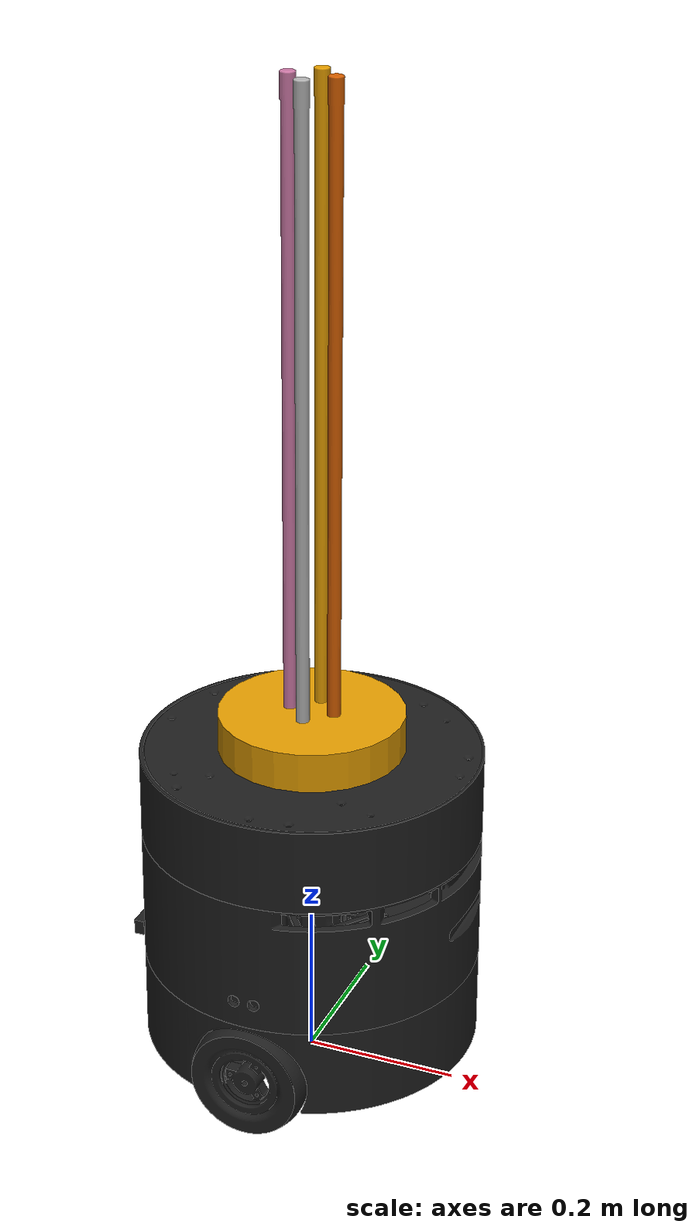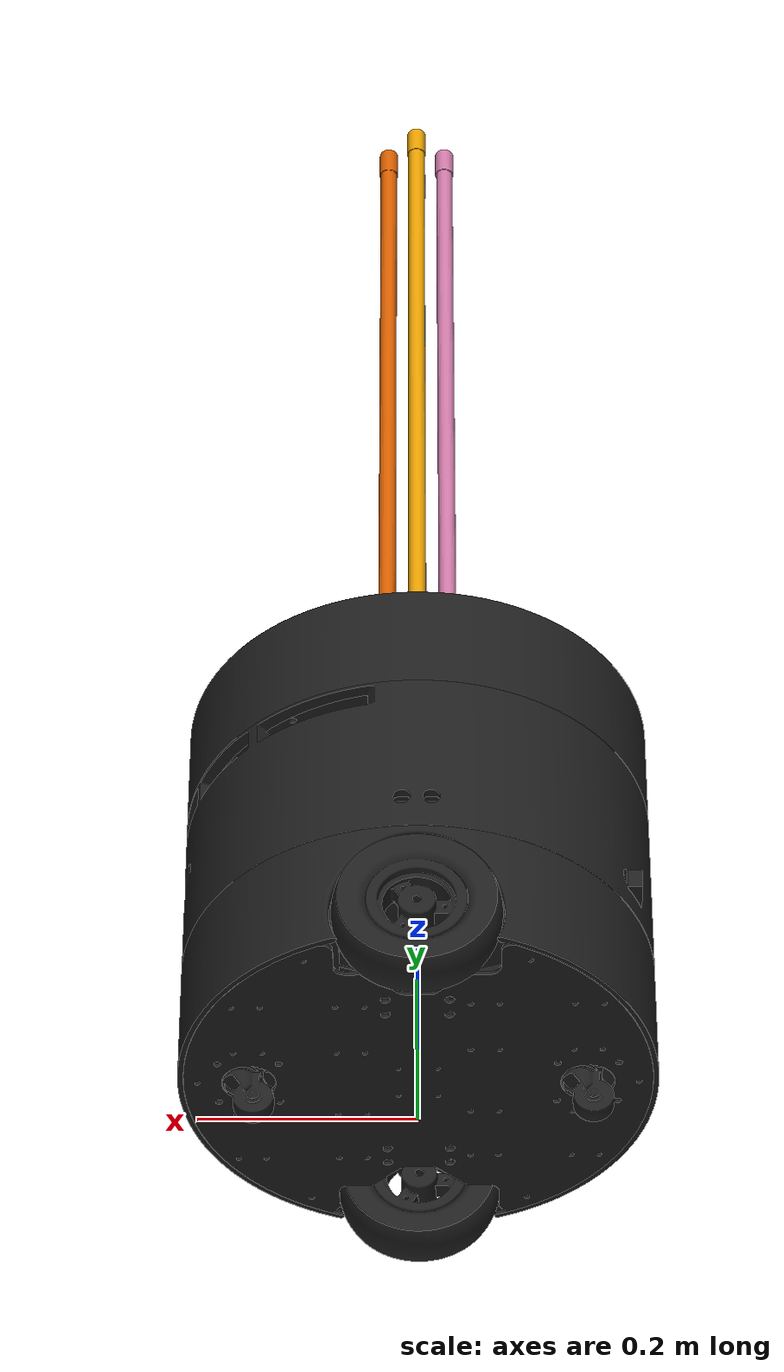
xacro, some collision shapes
<?xml version="1.0" ?>
<robot name="uvrobot_v2" xmlns:xacro="http://ros.org/wiki/xacro">
  <xacro:include filename="$(find uvrobots_description)/urdf/uvrobot_v2.gazebo.xacro"/>

  <!-- *** Link Definitions *** -->

  <!-- Base Footprint -->
	<link name="base_footprint"/>

	<!-- Base Link -->
  <joint name="base_joint" type="fixed">
    <parent link="base_footprint"/>
    <child link="base_link"/>
    <origin xyz="0.0 0.0 0.0446" rpy="0 0 0"/>
  </joint>

	<link name="base_link">
    <inertial>
      <origin xyz="0 0 0" rpy="0 0 0"/>
		  <mass value="1.28651"/>
		  <inertia ixx="4.09876e-03" ixy="2.74202e-06" ixz="1.35022e-05"
               iyy="6.10042e-03" iyz="-5.46931e-06"
               izz="1.01978e-02" />
    </inertial>

    <collision>
      <origin xyz="0 0 0" rpy="0 0 0"/>
      <geometry>
        <cylinder radius="0.215" length="0.004"/>
      </geometry>
    </collision>

    <visual>
      <origin xyz="0 0 0" rpy="0 0 0"/>
      <geometry>
        <mesh filename="package://uvrobots_description/meshes/V2/BOTTOM_CHASSIS_PLATE.STL"  scale="0.001 0.001 0.001"/>
      </geometry>
      <material name="black"/>
    </visual>
  </link>

	<!-- Caster Back Wheel -->
  <joint name="caster_back_joint" type="fixed">
    <parent link="base_link"/>
    <child link="caster_back_link"/>
    <origin xyz="-0.155 0 -0.0145" rpy="-1.5708 0 0"/>
  </joint>

  <link name="caster_back_link">
    <inertial>
      <origin xyz="0 0 0" />
      <mass value="0.09" />
      <inertia ixx="7.57929e-06" ixy="-1.2334e-13" ixz="-1.81974e-06"
               iyy="9.21232e-06" iyz="1.50542e-13"
               izz="4.83124e-06" />
    </inertial>

    <collision>
      <origin xyz="0 0 0" rpy="0 0 0"/>
      <geometry>
        <box size="0.059 0.059 0.059"/>
      </geometry>
    </collision>

    <visual>
      <origin xyz="0 0 0" rpy="0 0 0"/>
      <geometry>
        <mesh filename="package://uvrobots_description/meshes/V2/CASTOR_WHEELS.STL"  scale="0.001 0.001 0.001"/>
      </geometry>
      <material name="black"/>
    </visual>
  </link>

  <!-- Caster Front Wheel -->
  <joint name="caster_front_joint" type="fixed">
    <parent link="base_link"/>
    <child link="caster_front_link"/>
    <origin xyz="0.155 0 -0.0145" rpy="-1.5708 0 0"/>
  </joint>

  <link name="caster_front_link">
    <inertial>
      <origin xyz="0 0 0" />
      <mass value="0.09" />
      <inertia ixx="7.57929e-06" ixy="-1.2334e-13" ixz="-1.81974e-06"
               iyy="9.21232e-06" iyz="1.50542e-13"
               izz="4.83124e-06" />
    </inertial>

    <collision>
      <origin xyz="0 0 0" rpy="0 0 0"/>
      <geometry>
        <box size="0.059 0.059 0.059"/>
      </geometry>
    </collision>

    <visual>
      <origin xyz="0 0 0" rpy="0 0 0"/>
      <geometry>
        <mesh filename="package://uvrobots_description/meshes/V2/CASTOR_WHEELS.STL"  scale="0.001 0.001 0.001"/>
      </geometry>
      <material name="black"/>
    </visual>
  </link>

  <!-- Wheel Left Joint -->
  <joint name="wheel_left_joint" type="continuous">
    <parent link="base_link"/>
    <child link="wheel_left_link"/>
    <origin xyz="0.0 0.20055 0.032" rpy="-1.5708 0 0"/>
    <axis xyz="0 0 1"/>
  </joint>

  <link name="wheel_left_link">
    <inertial>
      <origin xyz="0 0 0" />
      <mass value="0.5" />
      <inertia ixx="1.25658e-03" ixy="2.3467e-14" ixz="6.91808e-16"
               iyy="2.28482e-03" iyz="-4.63769e-14"
               izz="1.25658e-03" />
    </inertial>

    <collision>
      <origin xyz="0 0 0" rpy="0 0 0"/>
      <geometry>
        <cylinder length="0.0483" radius="0.076784"/>
      </geometry>
    </collision>

    <visual>
      <origin xyz="0 0 0" rpy="1.5708 0 0"/>
      <geometry>
        <mesh filename="package://uvrobots_description/meshes/V2/LEFT_WHEEL.STL"  scale="0.001 0.001 0.001"/>
      </geometry>
      <material name="dark"/>
    </visual>
  </link>

  <!-- Wheel Right Joint -->
  <joint name="wheel_right_joint" type="continuous">
    <parent link="base_link"/>
    <child link="wheel_right_link"/>
    <origin xyz="0.0 -0.20055 0.032" rpy="-1.5708 0 0"/>
    <axis xyz="0 0 1"/>
  </joint>

  <link name="wheel_right_link">
    <inertial>
      <origin xyz="0 0 0" />
      <mass value="0.5" />
      <inertia ixx="1.25658e-03" ixy="2.3467e-14" ixz="6.91808e-16"
               iyy="2.28482e-03" iyz="-4.63769e-14"
               izz="1.25658e-03" />
    </inertial>

    <collision>
      <origin xyz="0 0 0" rpy="0 0 0"/>
      <geometry>
        <cylinder length="0.0483" radius="0.076784"/>
      </geometry>
    </collision>

    <visual>
      <origin xyz="0 0 0" rpy="1.5708 0 0"/>
      <geometry>
        <mesh filename="package://uvrobots_description/meshes/V2/RIGHT_WHEEL.STL"  scale="0.001 0.001 0.001"/>
      </geometry>
      <material name="dark"/>
    </visual>
  </link>

  <!-- Top Link -->
  <joint name="top_joint" type="fixed">
    <parent link="base_link"/>
    <child link="top_link"/>
    <origin xyz="0.0 0.0 0.116" rpy="0 0 0"/>
  </joint>

  <link name="top_link">
    <inertial>
      <origin xyz="0 0 0" rpy="0 0 0"/>
			<mass value="0.92649"/>
			<inertia ixx="6.3629e-03" ixy="3.26e-07" ixz="1.85614e-21"
               iyy="6.66864e-03" iyz="1.50542e-13"
               izz="4.83124e-06" />
		</inertial>

		<collision>
			<origin xyz="0 0 0" rpy="0 0 0"/>
			<geometry>
				<cylinder radius="0.215" length="0.004"/>
			</geometry>
		</collision>

		<visual>
			<origin xyz="0.0075 0.0015 0" rpy="0 0 0"/>
			<geometry>
				<mesh filename="package://uvrobots_description/meshes/V2/TOP_CHASSIS_PLATE.STL"  scale="0.001 0.001 0.001"/>
			</geometry>
			<material name="black"/>
		</visual>
	</link>

	<!-- Base Skirt -->
	<joint name="base_skirt_joint" type="fixed">
    <parent link="base_link"/>
    <child link="base_skirt_link"/>
    <origin xyz="0.0 0.0 0.061" rpy="0 0 0"/>
  </joint>

	<link name="base_skirt_link">
		<inertial>
			<origin xyz="0 0 0" rpy="0 0 0"/>
			<mass value="0.25"/>
			<inertia ixx="1.94954e-04" ixy="6.66951e-02" ixz="-1.07234e-02"
               iyy="2.27484e+1" iyz="3.07002e-05"
               izz="2.27486e+1" />
		</inertial>

		<collision>
			<origin xyz="0 0 0" rpy="0 0 0"/>
			<geometry>
				<cylinder radius="0.220" length="0.120"/>
			</geometry>
		</collision>

		<visual>
			<origin xyz="0 0 0" rpy="0 0 0"/>
			<geometry>
				<mesh filename="package://uvrobots_description/meshes/V2/BASE_SKIRT.STL"  scale="0.001 0.001 0.001"/>
			</geometry>
			<material name="black"/>
		</visual>
	</link>

  <!-- IMU -->
	<joint name="imu_joint" type="fixed">
    <parent link="base_link"/>
    <child link="imu_base"/>
    <!--origin xyz="-0.032 0 0.068" rpy="0 0 0"/-->
    <origin xyz="0.1076 0.0 0.2432" rpy="0 0 0"/>
  </joint>

	<link name="imu_base"/>

  <!-- Realsense D455 Camera Link -->
  <joint name="camera_joint" type="fixed">
    <parent link="base_link"/>
    <child link="camera_link"/>
    <origin xyz="0.198 0.0 0.2085" rpy="0 0 0"/>
  </joint>

  <link name="camera_link">
    <inertial>
      <origin xyz="0 0 0" />
      <mass value="0.72" />
      <inertia ixx="9.86959e-05" ixy="1.1973e-07" ixz="-7.99621e-07"
               iyy="9.2973e-06" iyz="1.12977e-08"
               izz="9.81244e-05" />
  	</inertial>

  	<collision>
      <origin xyz="0 0 0" rpy="0 0 0"/>
      <geometry>
        <box size="0.029 0.124 0.026"/>
      </geometry>
    </collision>

    <visual>
      <origin xyz="-0.005 0 -0.0015" rpy="0 0 0"/>
      <geometry>
        <mesh filename="package://uvrobots_description/meshes/V2/INTEL_REALSENSE_D455.STL"  scale="0.001 0.001 0.001"/>
      </geometry>
      <material name="black"/>
    </visual>
  </link>

  <joint name="camera_rgb_joint" type="fixed">
    <origin xyz="0.0 -0.02 0.0" rpy="0.0 0.0 0.0"/>
    <parent link="camera_link"/>
    <child link="camera_rgb_frame" />
  </joint>

  <link name="camera_rgb_frame"/>

  <joint name="camera_rgb_optical_joint" type="fixed">
    <origin xyz="0 0 0" rpy="-1.57079632679 0 -1.57079632679" />
    <parent link="camera_rgb_frame" />
    <child link="camera_rgb_optical_frame" />
  </joint>

  <link name="camera_rgb_optical_frame"/>

  <joint name="camera_depth_joint" type="fixed">
    <origin xyz="0 -0.045 0" rpy="0 0 0" />
    <parent link="camera_link" />
    <child link="camera_depth_frame" />
  </joint>

  <link name="camera_depth_frame"/>

  <joint name="camera_depth_optical_joint" type="fixed">
    <origin xyz="0 0 0" rpy="-1.57079632679 0 -1.57079632679" />
    <parent link="camera_depth_frame" />
    <child link="camera_depth_optical_frame" />
  </joint>

  <link name="camera_depth_optical_frame"/>

  <joint name="camera_optical_joint" type="fixed">
  <!-- these values have to be these values otherwise the gazebo camera
      image won't be aligned properly with the frame it is supposedly
      originating from -->
    <origin xyz="0 0 0" rpy="-1.57079632679 0 -1.57079632679"/>
    <parent link="camera_link"/>
    <child link="camera_link_optical"/>
  </joint>

  <link name="camera_link_optical"/>

  <!-- YDLIDAR G2 Scan -->
  <joint name="scan_joint" type="fixed">
    <parent link="base_link"/>
    <child link="base_scan"/>
    <origin xyz="0.138 0 0.2" rpy="0 0 0"/>
  </joint>

  <link name="base_scan">
    <inertial>
      <mass value="0.114" />
      <origin xyz="0 0 0" rpy="0 0 0"/>
      <inertia ixx="0.001" ixy="0.0" ixz="0.0"
               iyy="0.001" iyz="0.0"
               izz="0.001" />
    </inertial>

    <collision>
      <origin xyz="0 0 0" rpy="0 0 0"/>
      <geometry>
        <cylinder length="0.0425" radius="0.03685"/>
      </geometry>
    </collision>

    <visual>
      <origin xyz="0 0 0.0525" rpy="0 0 1.5708"/>
      <geometry>
        <mesh filename="package://uvrobots_description/meshes/V2/YDLidar_G2.STL"  scale="0.001 0.001 0.001"/>
      </geometry>
      <material name="dark"/>
    </visual>
  </link>

  <!-- Ultrasonic Sensor -->
  <joint name="base_ir_right1_joint" type="fixed">
    <parent link="base_link"/>
  	<child link="base_ir_right1"/>
  	<origin xyz="0 -0.200 0.150" rpy="-1.5708 0 0"/>
	</joint>

	<link name="base_ir_right1">
  	<inertial>
  		<mass value="1e-5" />
  		<origin xyz="0 0 0" rpy="0 0 0"/>
  		<inertia ixx="1e-6" ixy="0" ixz="0"
  		  iyy="1e-6" iyz="0"
        izz="1e-6" />
    </inertial>

    <collision>
      <origin xyz="0 0 0" rpy="0 0 0"/>
      <geometry>
        <box size="0.045 0.02 0.0135"/>
      </geometry>
    </collision>

    <visual>
      <origin xyz="-0.002 -0.0025 -0.0075" rpy="3.14159 0 1.5708"/>
      <geometry>
        <mesh filename="package://uvrobots_description/meshes/V2/HC-SR04.STL"  scale="0.001 0.001 0.001"/>
      </geometry>
      <material name="dark"/>
    </visual>
  </link>

  <joint name="base_ir_right2_joint" type="fixed">
    <parent link="base_link"/>
    <child link="base_ir_right2"/>
    <origin xyz="-0.200 -0.0855 0.150" rpy="1.5708 0 1.5708"/>
  </joint>

  <link name="base_ir_right2">
    <inertial>
      <mass value="1e-5" />
      <origin xyz="0 0 0" rpy="0 0 0"/>
      <inertia ixx="1e-6" ixy="0" ixz="0"
        iyy="1e-6" iyz="0"
        izz="1e-6" />
    </inertial>

    <collision>
      <origin xyz="0 0 0" rpy="0 0 0"/>
      <geometry>
        <box size="0.045 0.02 0.0135"/>
      </geometry>
    </collision>

    <visual>
      <origin xyz="-0.001 0.0025 0.01" rpy="2.70526 0 -1.5708"/>
      <geometry>
        <mesh filename="package://uvrobots_description/meshes/V2/HC-SR04.STL"  scale="0.001 0.001 0.001"/>
      </geometry>
      <material name="dark"/>
    </visual>
  </link>

  <joint name="base_ir_left1_joint" type="fixed">
    <parent link="base_link"/>
    <child link="base_ir_left1"/>
    <origin xyz="0 0.200 0.150" rpy="1.5708 0 0"/>
  </joint>

  <link name="base_ir_left1">
    <inertial>
      <mass value="1e-5" />
      <origin xyz="0 0 0" rpy="0 0 0"/>
  		<inertia ixx="1e-6" ixy="0" ixz="0"
    		iyy="1e-6" iyz="0"
    		izz="1e-6" />
  	</inertial>

  	<collision>
  		<origin xyz="0 0 0" rpy="0 0 0"/>
  		<geometry>
  			<box size="0.045 0.02 0.0135"/>
  		</geometry>
  	</collision>

  	<visual>
  		<origin xyz="0.002 0.0025 -0.007" rpy="3.14159 0 -1.5708"/>
  		<geometry>
    		<mesh filename="package://uvrobots_description/meshes/V2/HC-SR04.STL"  scale="0.001 0.001 0.001"/>
  		</geometry>
  		<material name="dark"/>
  	</visual>
	</link>

	<joint name="base_ir_left2_joint" type="fixed">
  	<parent link="base_link"/>
  	<child link="base_ir_left2"/>
  	<origin xyz="-0.200 0.0855 0.150" rpy="1.5708 0 1.5708"/>
	</joint>

	<link name="base_ir_left2">
  	<inertial>
  		<mass value="1e-5" />
  		<origin xyz="0 0 0" rpy="0 0 0"/>
  		<inertia ixx="1e-6" ixy="0" ixz="0"
    		iyy="1e-6" iyz="0"
    		izz="1e-6" />
  	</inertial>

  	<collision>
  		<origin xyz="0 0 0" rpy="0 0 0"/>
  		<geometry>
  			<box size="0.045 0.02 0.0135"/>
  		</geometry>
  	</collision>

  	<visual>
  		<origin xyz="0.004 0.0025 0.012" rpy="3.57792 0 -1.5708"/>
  		<geometry>
    		<mesh filename="package://uvrobots_description/meshes/V2/HC-SR04.STL"  scale="0.001 0.001 0.001"/>
  		</geometry>
  		<material name="dark"/>
  	</visual>
	</link>

	<!-- Top Skirt -->
	<joint name="top_skirt_joint" type="fixed">
    <parent link="base_link"/>
  	<child link="top_skirt_link"/>
  	<origin xyz="0.0 0.0 0.19755" rpy="0 0 0"/>
	</joint>

	<link name="top_skirt_link">
    <inertial>
      <origin xyz="0 0 0" rpy="0 0 0"/>
      <mass value="0.37"/>
		  <inertia ixx="7.6943e-02" ixy="4.24102e-03" ixz="-1.39489e-03"
               iyy="-3.13302e-02" iyz="-1.10959e-04"
               izz="3.45636e-02" />
  	</inertial>

		<collision>
      <origin xyz="0 0 0" rpy="0 0 0"/>
      <geometry>
        <cylinder radius="0.220" length="0.1772"/>
			</geometry>
		</collision>

		<visual>
      <origin xyz="0.037 -0.001 0" rpy="0 0 0"/>
      <geometry>
        <mesh filename="package://uvrobots_description/meshes/V2/TOP_SKIRT.STL"  scale="0.001 0.001 0.001"/>
      </geometry>
      <material name="black"/>
    </visual>
  </link>

	<!-- UV Model -->
  <joint name="uv_base_joint" type="fixed">
    <parent link="base_link"/>
    <child link="uv_base_link"/>
    <origin xyz="0.0 0.0 0.2972" rpy="0 0 0"/>
  </joint>

  <link name="uv_base_link">
    <inertial>
      <origin xyz="0 0 0" rpy="0 0 0"/>
			<mass value="1.0"/>
			<inertia ixx="6.35262e-03" ixy="5.92227e-07" ixz="-1.11331e-09"
               iyy="6.05308e-03" iyz="-1.25024e-11"
               izz="1.24042e-02" />
		</inertial>

		<collision>
			<origin xyz="0 0 0" rpy="0 0 0"/>
			<geometry>
				<cylinder radius="0.215" length="0.004"/>
			</geometry>
		</collision>

		<visual>
			<origin xyz="-0.0175 -0.005 0" rpy="0 0 0"/>
			<geometry>
				<mesh filename="package://uvrobots_description/meshes/V2_UV_Module/UV_BOTTOM_PLATE.STL"  scale="0.001 0.001 0.001"/>
			</geometry>
			<material name="black"/>
		</visual>
	</link>

  <!-- UV SKIRT -->
	<joint name="uv_skirt_joint" type="fixed">
    <parent link="uv_base_link"/>
    <child link="uv_skirt_link"/>
    <origin xyz="0.0 0.0 0.05425" rpy="0 0 0"/>
  </joint>

	<link name="uv_skirt_link">
		<inertial>
			<origin xyz="0 0 0" rpy="0 0 0"/>
			<mass value="0.25"/>
			<inertia ixx="4.58184e-02" ixy="6.22084e-04" ixz="-4.34012e-06"
               iyy="4.71548e-02" iyz="-1.30507e-05"
               izz="8.93176e-02" />
		</inertial>

		<collision>
			<origin xyz="0 0 0" rpy="0 0 0"/>
			<geometry>
				<cylinder radius="0.220" length="0.1772"/>
			</geometry>
		</collision>

		<visual>
			<origin xyz="-0.0001 0.0001 0" rpy="0 0 0"/>
			<geometry>
				<mesh filename="package://uvrobots_description/meshes/V2_UV_Module/UV_SKIRT.STL"  scale="0.001 0.001 0.001"/>
			</geometry>
			<material name="black"/>
		</visual>
	</link>

	<joint name="uv_top_joint" type="fixed">
    <parent link="uv_base_link"/>
    <child link="uv_top_link"/>
    <origin xyz="0.0 0.0 0.1082" rpy="0 0 0"/>
	</joint>

	<link name="uv_top_link">
		<inertial>
			<origin xyz="0 0 0" rpy="0 0 0"/>
			<mass value="1.0"/>
			<inertia ixx="6.44579e-03" ixy="-2.25193e-06" ixz="-1.5402e-08"
               iyy="6.46613e-03" iyz="7.19527e-09"
               izz="1.29105e-02" />
		</inertial>

		<collision>
			<origin xyz="0 0 0" rpy="0 0 0"/>
			<geometry>
				<cylinder radius="0.215" length="0.004"/>
			</geometry>
		</collision>

		<visual>
			<origin xyz="-0.0075 0.0075 -0.00075" rpy="0 0 0"/>
			<geometry>
				<mesh filename="package://uvrobots_description/meshes/V2_UV_Module/UV_TOP_PLATE.STL"  scale="0.001 0.001 0.001"/>
			</geometry>
			<material name="black"/>
		</visual>
	</link>

	<!-- UV Lamp Top Module -->
	<joint name="uv_joint" type="fixed">
    <parent link="uv_base_link"/>
    <child link="uv_link"/>
    <origin xyz="0 0 0.137" rpy="0 0 0"/>
  </joint>

  <link name="uv_link">
    <inertial>
      <mass value="0.114" />
    	<origin xyz="0 0 0" />
    		<inertia ixx="0.001" ixy="0.0" ixz="0.0"
             iyy="0.001" iyz="0.0"
             izz="0.001" />
  	</inertial>

  	<collision>
  		<origin xyz="0 0 0" rpy="0 0 0"/>
  		<geometry>
  			<cylinder length="0.0516" radius="0.120"/>
  		</geometry>
  	</collision>

  	<visual>
  		<origin xyz="0 0 0.147" rpy="0 0 0"/>
  		<geometry>
    		<mesh filename="package://uvrobots_description/meshes/V2_UV_Module/UV_LAMP_TOP.STL"  scale="0.001 0.001 0.001"/>
  		</geometry>
  		<material name="dark"/>
  	</visual>
	</link>

	<!-- Ultrasonic Sensor -->
	<joint name="uv_ir_right1_joint" type="fixed">
    <parent link="uv_link"/>
    <child link="uv_ir_right1"/>
    <origin xyz="0.067 -0.069 0.0035" rpy="0.785398 0 0.785398"/>
  </joint>

	<link name="uv_ir_right1">
  	<inertial>
      <mass value="1e-5" />
      <origin xyz="0 0 0" rpy="0 0 0"/>
      <inertia ixx="1e-6" ixy="0" ixz="0"
    		iyy="1e-6" iyz="0"
    		izz="1e-6" />
  	</inertial>

  	<collision>
  		<origin xyz="0 0 0" rpy="0 0 0"/>
  		<geometry>
  			<box size="0.045 0.02 0.0135"/>
  		</geometry>
  	</collision>

  	<visual>
  		<origin xyz="0 0 0.0" rpy="0 0 -1.5708"/>
  		<geometry>
    		<mesh filename="package://uvrobots_description/meshes/V2_UV_Module/HC-SR04.STL"  scale="0.001 0.001 0.001"/>
  		</geometry>
  		<material name="dark"/>
  	</visual>
	</link>

	<joint name="uv_ir_right2_joint" type="fixed">
  	<parent link="uv_link"/>
  	<child link="uv_ir_right2"/>
  	<origin xyz="-0.069 -0.067 0.0035" rpy="3.9269 3.14159 2.35619"/>
	</joint>

	<link name="uv_ir_right2">
  	<inertial>
  		<mass value="1e-5" />
  		<origin xyz="0 0 0" rpy="0 0 0"/>
  		<inertia ixx="1e-6" ixy="0" ixz="0"
    		iyy="1e-6" iyz="0"
    		izz="1e-6" />
  	</inertial>

  	<collision>
  		<origin xyz="0 0 0" rpy="0 0 0"/>
  		<geometry>
  			<box size="0.045 0.02 0.0135"/>
  		</geometry>
  	</collision>

  	<visual>
  		<origin xyz="0 0 0.0" rpy="0 0 -1.5708"/>
  		<geometry>
    		<mesh filename="package://uvrobots_description/meshes/V2_UV_Module/HC-SR04.STL"  scale="0.001 0.001 0.001"/>
  		</geometry>
  		<material name="dark"/>
  	</visual>
	</link>

	<joint name="uv_ir_left1_joint" type="fixed">
  	<parent link="uv_link"/>
  	<child link="uv_ir_left1"/>
  	<origin xyz="0.067 0.069 0.0035" rpy="-0.785398 0 -0.785398"/>
	</joint>

	<link name="uv_ir_left1">
  	<inertial>
  		<mass value="1e-5" />
  		<origin xyz="0 0 0" rpy="0 0 0"/>
  		<inertia ixx="1e-6" ixy="0" ixz="0"
    		iyy="1e-6" iyz="0"
    		izz="1e-6" />
  	</inertial>

  	<collision>
  		<origin xyz="0 0 0" rpy="0 0 0"/>
  		<geometry>
  			<box size="0.045 0.02 0.0135"/>
  		</geometry>
  	</collision>

  	<visual>
  		<origin xyz="0 0 0.0" rpy="0 0 -1.5708"/>
  		<geometry>
    		<mesh filename="package://uvrobots_description/meshes/V2_UV_Module/HC-SR04.STL"  scale="0.001 0.001 0.001"/>
  		</geometry>
  		<material name="dark"/>
  	</visual>
	</link>

	<joint name="uv_ir_left2_joint" type="fixed">
  	<parent link="uv_link"/>
  	<child link="uv_ir_left2"/>
  	<origin xyz="-0.067 0.069 0.0035" rpy="0.785398 0 -2.35619"/>
	</joint>

	<link name="uv_ir_left2">
  	<inertial>
  		<mass value="1e-5" />
  		<origin xyz="0 0 0" rpy="0 0 0"/>
  		<inertia ixx="1e-6" ixy="0" ixz="0"
    		iyy="1e-6" iyz="0"
    		izz="1e-6" />
  	</inertial>

  	<collision>
  		<origin xyz="0 0 0" rpy="0 0 0"/>
  		<geometry>
  			<box size="0.045 0.02 0.0135"/>
  		</geometry>
  	</collision>

  	<visual>
  		<origin xyz="0 0 0.0" rpy="0 0 -1.5708"/>
  		<geometry>
    		<mesh filename="package://uvrobots_description/meshes/V2_UV_Module/HC-SR04.STL"  scale="0.001 0.001 0.001"/>
  		</geometry>
  		<material name="dark"/>
  	</visual>
	</link>

	<!-- UV Tube Light -->
	<joint name="uv_lamp_front_joint" type="fixed">
  	<parent link="uv_link"/>
  	<child link="uv_lamp_front_link"/>
  	<origin xyz="0.03 0 0.385" rpy="0 0 0"/>
	</joint>

  <link name="uv_lamp_front_link">
  	<inertial>
  		<origin xyz="0 0 0" />
      <mass value="0.083" />
  		<inertia ixx="1.24481e-02" ixy="3.27202e-22" ixz="-3.81582e-20"
               iyy="1.24481e-02" iyz="-3.01958e-18"
               izz="7.74459e-06" />
  	</inertial>

  	<collision>
  		<origin xyz="0 0 0" rpy="0 0 0"/>
  		<geometry>
  			<cylinder length="0.8454" radius="0.0094"/>
  		</geometry>
  	</collision>

  	<visual>
  		<origin xyz="0 0 0.0" rpy="0 0 0"/>
  		<geometry>
    		<mesh filename="package://uvrobots_description/meshes/V2_UV_Module/UV_LAMP.STL"  scale="0.001 0.001 0.001"/>
  		</geometry>
  		<material name="dark"/>
  	</visual>
	</link>

	<joint name="uv_lamp_back_joint" type="fixed">
  	<parent link="uv_link"/>
  	<child link="uv_lamp_back_link"/>
  	<origin xyz="-0.03 0 0.385" rpy="0 0 0"/>
	</joint>

  <link name="uv_lamp_back_link">
  	<inertial>
  		<origin xyz="0 0 0" />
  		<mass value="0.083" />
      <inertia ixx="1.24481e-02" ixy="3.27202e-22" ixz="-3.81582e-20"
               iyy="1.24481e-02" iyz="-3.01958e-18"
               izz="7.74459e-06" />
  	</inertial>

  	<collision>
  		<origin xyz="0 0 0" rpy="0 0 0"/>
  		<geometry>
  			<cylinder length="0.8454" radius="0.0094"/>
  		</geometry>
  	</collision>

  	<visual>
  		<origin xyz="0 0 0.0" rpy="0 0 0"/>
  		<geometry>
    		<mesh filename="package://uvrobots_description/meshes/V2_UV_Module/UV_LAMP.STL"  scale="0.001 0.001 0.001"/>
  		</geometry>
  		<material name="dark"/>
  	</visual>
	</link>

  <joint name="uv_lamp_right_joint" type="fixed">
  	<parent link="uv_link"/>
  	<child link="uv_lamp_right_link"/>
  	<origin xyz="0 -0.03 0.385" rpy="0 0 0"/>
	</joint>

  <link name="uv_lamp_right_link">
  	<inertial>
  		<origin xyz="0 0 0" />
  		<mass value="0.083" />
      <inertia ixx="1.24481e-02" ixy="3.27202e-22" ixz="-3.81582e-20"
               iyy="1.24481e-02" iyz="-3.01958e-18"
               izz="7.74459e-06" />
  	</inertial>

  	<collision>
  		<origin xyz="0 0 0" rpy="0 0 0"/>
  		<geometry>
  			<cylinder length="0.8454" radius="0.0094"/>
  		</geometry>
  	</collision>

  	<visual>
  		<origin xyz="0 0 0.0" rpy="0 0 0"/>
  		<geometry>
    		<mesh filename="package://uvrobots_description/meshes/V2_UV_Module/UV_LAMP.STL"  scale="0.001 0.001 0.001"/>
  		</geometry>
  		<material name="dark"/>
  	</visual>
	</link>

	<joint name="uv_lamp_left_joint" type="fixed">
  	<parent link="uv_link"/>
  	<child link="uv_lamp_left_link"/>
  	<origin xyz="0 0.03 0.385" rpy="0 0 0"/>
	</joint>

  <link name="uv_lamp_left_link">
  	<inertial>
  		<origin xyz="0 0 0" />
  		<mass value="0.083" />
      <inertia ixx="1.24481e-02" ixy="3.27202e-22" ixz="-3.81582e-20"
               iyy="1.24481e-02" iyz="-3.01958e-18"
               izz="7.74459e-06" />
  	</inertial>

  	<collision>
  		<origin xyz="0 0 0" rpy="0 0 0"/>
  		<geometry>
  			<cylinder length="0.8454" radius="0.0094"/>
  		</geometry>
  	</collision>

  	<visual>
  		<origin xyz="0 0 0.0" rpy="0 0 0"/>
  		<geometry>
    		<mesh filename="package://uvrobots_description/meshes/V2_UV_Module/UV_LAMP.STL"  scale="0.001 0.001 0.001"/>
  		</geometry>
  		<material name="dark"/>
  	</visual>
	</link>

	<!-- V2 Simulated Sensors -->
	<joint name="sim_ir_right1_joint" type="fixed">
  	<parent link="base_ir_right1"/>
  	<child link="sim_ir_right1"/>
  	<origin xyz="0 0 0" rpy="0 1.5708 0"/>
	</joint>

	<link name="sim_ir_right1"/>

 	<joint name="sim_ir_right2_joint" type="fixed">
  	<parent link="base_ir_right2"/>
  	<child link="sim_ir_right2"/>
  	<origin xyz="-0.01 0.005 0" rpy="0 2.0944 0"/>
	</joint>

	<link name="sim_ir_right2"/>

 	<joint name="sim_ir_left1_joint" type="fixed">
  	<parent link="base_ir_left1"/>
  	<child link="sim_ir_left1"/>
  	<origin xyz="0 0 0" rpy="0 1.5708 0"/>
	</joint>

	<link name="sim_ir_left1"/>

 	<joint name="sim_ir_left2_joint" type="fixed">
  	<parent link="base_ir_left2"/>
  	<child link="sim_ir_left2"/>
  	<origin xyz="-0.01 0.005 0" rpy="0 1.0472 0"/>
	</joint>

	<link name="sim_ir_left2"/>

 	<joint name="sim_joint" type="fixed">
  	<parent link="base_scan"/>
  	<child link="sim_scan"/>
  	<origin xyz="0 0 0.075" rpy="0 0 0"/>
	</joint>

	<link name="sim_scan"/>

	<joint name="sim_uv_ir_right1_joint" type="fixed">
  	<parent link="uv_ir_right1"/>
  	<child link="sim_uv_ir_right1"/>
  	<origin xyz="0 0 0" rpy="0 -1.5708 1.5708"/>
	</joint>

	<link name="sim_uv_ir_right1"/>

 	<joint name="sim_uv_ir_right2_joint" type="fixed">
  	<parent link="uv_ir_right2"/>
  	<child link="sim_uv_ir_right2"/>
  	<origin xyz="0 0 0" rpy="0 -1.5708 1.5708"/>
	</joint>

	<link name="sim_uv_ir_right2"/>

 	<joint name="sim_uv_ir_left1_joint" type="fixed">
  	<parent link="uv_ir_left1"/>
  	<child link="sim_uv_ir_left1"/>
  	<origin xyz="0 0 0" rpy="0 -1.5708 1.5708"/>
	</joint>

	<link name="sim_uv_ir_left1"/>

 	<joint name="sim_uv_ir_left2_joint" type="fixed">
  	<parent link="uv_ir_left2"/>
  	<child link="sim_uv_ir_left2"/>
  	<origin xyz="0 0 0" rpy="0 -1.5708 1.5708"/>
	</joint>

	<link name="sim_uv_ir_left2"/>
</robot>
